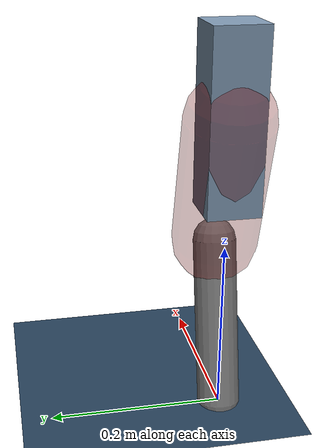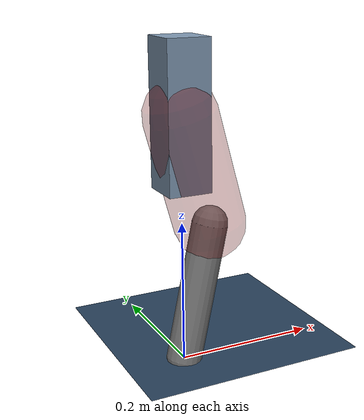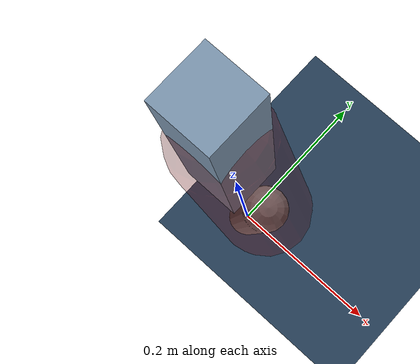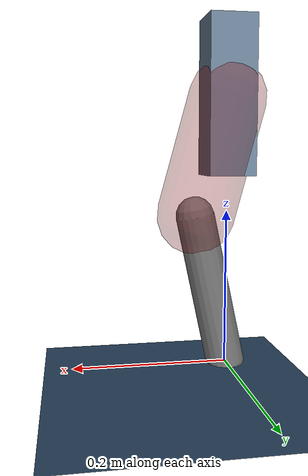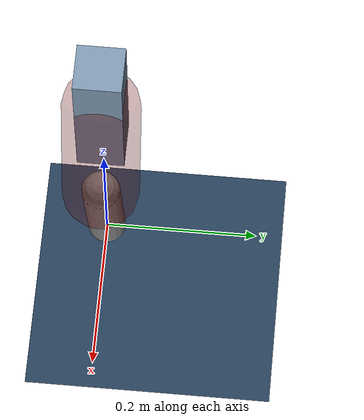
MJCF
<mujoco model="Hopper2D">
	<compiler inertiafromgeom="true" angle="radian" />
	<option timestep="0.001" integrator="implicit" cone="elliptic" solver="Newton" tolerance="1e-10" />

	<default>
		<geom contype="1" conaffinity="1" condim="3" friction="2 0.005 0.0001" solref="0.005 1" />
		<joint limited="true" damping="0.1" />
	</default>

	<asset>
		<texture name="skybox" type="skybox" builtin="gradient" rgb1=".4 .6 .8" rgb2="0 0 0" width="800" height="800" />
		<texture name="grid" type="2d" builtin="checker" rgb1=".1 .2 .3" rgb2=".2 .3 .4" width="300" height="300" mark="edge" markrgb=".2 .3 .4" />
		<material name="ground" texture="grid" texrepeat="1 1" texuniform="true" reflectance="0.1" />
		<material name="leg" rgba="0.5 0.6 0.7 1" />
	</asset>

	<worldbody>

		<geom name="floor" type="plane" size="5 5 0.25" material="ground" />

		<light directional="false" diffuse="0.8 0.8 0.8" specular="0.3 0.3 0.3" pos="0 0 2" dir="0 0 -1" />
		<light mode="targetbodycom" target="base" directional="false" diffuse="0.8 0.8 0.8" specular="0.3 0.3 0.3" pos="0 0 2" dir="0 0 -1" />

		<camera name="fixed" pos="0 -2 1" xyaxes="1 0 0 0 0 1" />
		<camera name="tracking" mode="trackcom" pos="0 -3 1" />

		<body name="root" pos="0 0 0.34645499748935404">
			<joint name="slide_x" type="slide" axis="1 0 0" range="-100 100" />
			<joint name="slide_z" type="slide" axis="0 0 1" range="0 10" />

			<body name="base" pos="0 0 0">
				<geom name="torso" type="box" size="0.03 0.03 0.1" mass="2.6310000000000002" material="leg" />

				<body name="link1" pos="0 0 0" euler="0 1.3036169140863367 0">
					<joint type="hinge" axis="0 -1 0" pos="0 0 0" name="hinge1" limited="true" range="-3.14 3.14" stiffness="0" damping="0.1" />
					<geom name="thigh" type="capsule" fromto="0 0 0 0.1576566502170138 0 0" size="0.05" rgba="0.5 0 0 0.3" mass="0.6266759605208331" />

					<body name="link2" pos="0.1576566502170138 0 0" euler="0 0.4781143403744852 0">
						<joint type="hinge" axis="0 -1 0" pos="0 0 0" name="hinge2" limited="true" range="-3.14 3.14" stiffness="0" damping="0.1" />
						<geom name="shank" type="capsule" fromto="0 0 0 0.19879834727234022 0 0" size="0.025" mass="0.3999185125451062" />

					</body>
				</body>
			</body>
		</body>
	</worldbody>

	<actuator>
		<motor name="torque1" joint="hinge1" ctrlrange="-145.97871125398188 145.97871125398188" ctrllimited="true" gear="1" />
		<motor name="torque2" joint="hinge2" ctrlrange="-52.21840175720598 52.21840175720598" ctrllimited="true" gear="1" />
	</actuator>
</mujoco>
